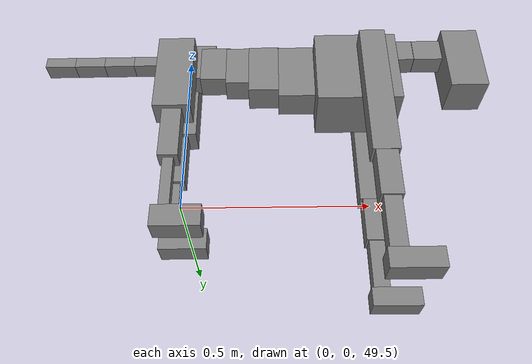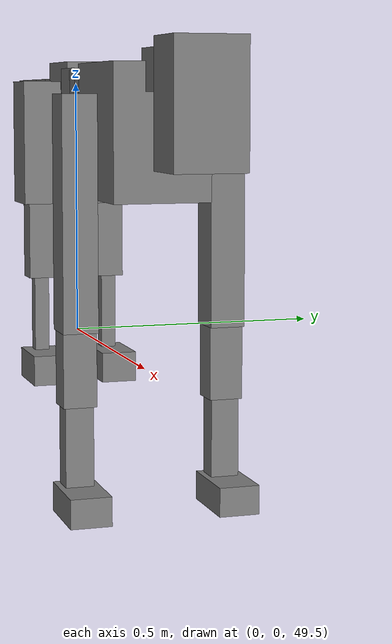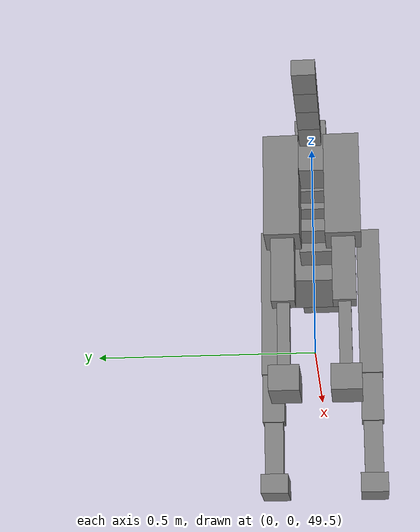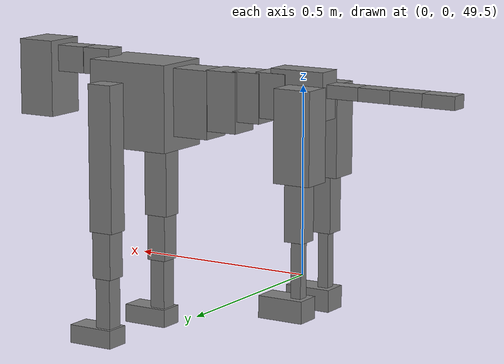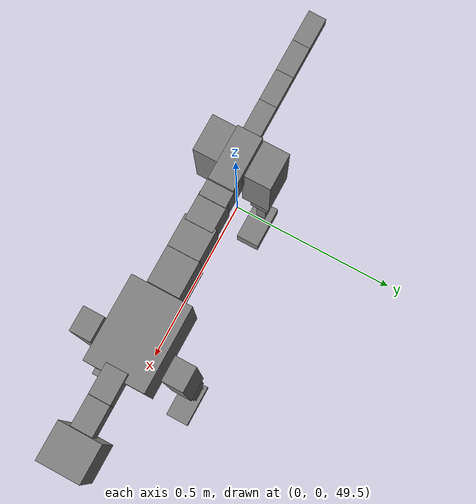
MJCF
<mujoco model="dog">

    <default>
        <joint armature="0.02" stiffness="1" damping="0.2" limited="true"/>
        <geom condim="3" friction="1 0.05 0.05" margin="0.01"/>
        <motor ctrllimited="true" ctrlrange="-1.0 1.0" forcelimited="true" gear="50"/>
    </default>

    <compiler inertiafromgeom="true" angle="radian"/>

    <option timestep="0.016" iterations="50" tolerance="1e-10" solver="Newton" jacobian="dense" cone="pyramidal"/>

    <size nconmax="20000" njmax="60000" nstack="5000000"/>
    <visual>
        <map force="0.1" zfar="30"/>
        <rgba haze="0.15 0.25 0.35 1"/>
        <quality shadowsize="2048"/>
        <global offwidth="800" offheight="800"/>
    </visual>

    <asset>
        <texture type="skybox" builtin="gradient" rgb1="0.3 0.5 0.7" rgb2="0 0 0" width="512" height="512"/>
        <texture name="texplane" type="2d" builtin="checker" rgb1=".2 .3 .4" rgb2=".1 0.15 0.2" width="512" height="512"
                 mark="cross" markrgb=".8 .8 .8"/>
        <texture name="texgeom" type="cube" builtin="flat" mark="cross" width="127" height="1278" rgb1="0.8 0.6 0.4"
                 rgb2="0.8 0.6 0.4" markrgb="1 1 1" random="0.01"/>

        <material name="matplane" reflectance="0.3" texture="texplane" texrepeat="1 1" texuniform="true"/>
        <material name="matgeom" texture="texgeom" texuniform="true" rgba="0.8 0.6 .4 1"/>
    </asset>

    <worldbody>
        <geom name="floor" pos="0 0 0" size="0 0 .25" type="plane" material="matplane" condim="3"/>

        <light directional="false" diffuse=".2 .2 .2" specular="0 0 0" pos="0 0 5" dir="0 0 -1" castshadow="false"/>
        <light mode="targetbodycom" target="torso" directional="false" diffuse=".8 .8 .8" specular="0.3 0.3 0.3"
               pos="0 0 4.0" dir="0 0 -1"/>

        <body name="root" pos="0 0 50">
            <freejoint name="root_1"/>
            <geom type="box" pos="0 0 -0.02" size="0.0774  0.0358  0.063" density="2030"/>

            <body name="spine1" pos="0.054 0 0">
                <joint name="spine1_y" axis="0 1 0" range="0 0.7" limited="true"/>
                <geom type="box" pos="0.02375 0 -0.03" size="0.04375  0.0375  0.05985" density="2030"/>

                <body name="spine2" pos="0.0612 0 0">
                    <joint name="spine2_y" axis="0 1 0" range="-0.15 0.15" limited="true"/>
                    <geom type="box" pos="0.03555  0  -0.04" size="0.04055  0.039  0.06615" density="2030"/>

                    <body name="spine3" pos="0.0730 0 0">
                        <joint name="spine3_y" axis="0 1 0" range="-0.15 0.15" limited="true"/>
                        <geom type="box" pos="0.03555  0  -0.057" size="0.04555  0.0445  0.081" density="2030"/>

                        <body name="spine4" pos="0.0780 0 0">
                            <joint name="spine4_y" axis="0 1 0" range="-0.15 0.15" limited="true"/>
                            <geom type="box" pos="0.05265  0  -0.07" size="0.05265  0.045  0.09135" density="2030"/>

                            <body name="torso" pos="0.1082 0 0">
                                <joint name="torso_y" axis="0 1 0" range="-0.15 0.15" limited="true"/>
                                <geom type="box" pos="0.11925  0  -0.085" size="0.11925  0.085  0.11745"
                                      density="2030"/>

                                <body name="neck1" pos="0.2160  0   0.0180">
                                    <joint name="neck1_y" axis="0 1 0" range="-1.2  -1" limited="true"/>
                                    <geom type="box" pos="0.0423  0  0" size="0.0423  0.03  0.036" density="2325"/>

                                    <body name="neck2" pos="0.0853  0  0">
                                        <joint name="neck2_y" axis="0 1 0" range="0.1  0" limited="true"/>
                                        <geom type="box" pos="0.0423  0  0" size="0.0423  0.03  0.036" density="2325"/>

                                        <body name="head" pos="0.0853  0  0">
                                            <joint name="head_y" axis="0 1 0" range="-0.3  -0.2" limited="true"/>
                                            <geom type="box" pos="0.0531  0  -0.055" size="0.0531  0.06  0.1044"
                                                  density="4030"/>

                                        </body>
                                    </body>
                                </body>

                                <body name="front_shoulder" pos="0.156  0   -0.0480">
                                    <joint name="front_shoulder_y" axis="0 1 0" range="-1 1.5" limited="true"/>
                                    <geom type="box" pos="0 0.13 -0.1737" size="0.0355  0.0303  0.2004" density="1158"/>
                                    <geom type="box" pos="0 -0.13 -0.1737" size="0.0355  0.0303  0.2004"
                                          density="1158"/>

                                    <body name="front_elbow" pos="0  0  -0.3475">
                                        <joint name="front_elbow_y" axis="0 1 0" range="-2 0" limited="true"/>
                                        <geom type="box" pos="0 0.13 -0.0770" size="0.0283  0.0290  0.0770"
                                              density="1081"/>
                                        <geom type="box" pos="0 -0.13 -0.0770" size="0.0283  0.0290  0.0770"
                                              density="1081"/>

                                        <body name="front_wrist" pos="0  0  -0.1540">
                                            <joint name="front_wrist_y" axis="0 1 0" range="-0.2 0" limited="true"/>
                                            <geom type="box" pos="0 0.13 -0.0763" size="0.0221  0.0246  0.0895"
                                                  density="1664"/>
                                            <geom type="box" pos="0 -0.13 -0.0763" size="0.0221  0.0246  0.0895"
                                                  density="1664"/>

                                            <body name="front_finger_end" pos="0  0  -0.1526">
                                                <joint name="front_finger_y" axis="0 1 0" range="-0.4 1"
                                                       limited="true"/>
                                                <geom type="box" pos="0.0356  0.13  -0.0102"
                                                      size="0.0654  0.0356  0.0252" density="1515"/>
                                                <geom type="box" pos="0.0356  -0.13  -0.0102"
                                                      size="0.0654  0.0356  0.0252" density="1515"/>

                                            </body>

                                        </body>
                                    </body>
                                </body>

                            </body>
                        </body>
                    </body>
                </body>
            </body>

            <body name="back_hip" pos="-0.03 0 -0.018">
                <joint name="back_hip_y" axis="0 1 0" range="-1.5 0.3" limited="true"/>
                <geom type="box" pos="0 0.07 -0.0996" size="0.0524  0.0411  0.1224" density="1154"/>
                <geom type="box" pos="0 -0.07 -0.0996" size="0.0524  0.0411  0.1224" density="1154"/>

                <body name="back_knee" pos="0  0  -0.1991">
                    <joint name="back_knee_y" axis="0 1 0" range="0 2.8" limited="true"/>
                    <geom type="box" pos="0 0.07 -0.0797" size="0.0274  0.0270  0.0952" density="1227"/>
                    <geom type="box" pos="0 -0.07 -0.0797" size="0.0274  0.0270  0.0952" density="1227"/>

                    <body name="back_ankle" pos="0  0  -0.1594">
                        <joint name="back_ankle_y" axis="0 1 0" range="-2.2 0" limited="true"/>
                        <geom type="box" pos="0 0.07 -0.0899" size="0.0145  0.0145  0.1012" density="1284"/>
                        <geom type="box" pos="0 -0.07 -0.0899" size="0.0145  0.0145  0.1012" density="1284"/>

                        <body name="back_toe_end" pos="0  0  -0.1798">
                            <joint name="back_toe_y" axis="0 1 0" range="-0.4 1" limited="true"/>
                            <geom type="box" pos="0.0350  0.07  -0.0146" size="0.0641  0.0350  0.0296" density="1515"/>
                            <geom type="box" pos="0.0350  -0.07  -0.0146" size="0.0641  0.0350  0.0296" density="1515"/>

                        </body>
                    </body>
                </body>
            </body>

            <body name="tail1" pos="-0.074 0 -0.006">
                <joint name="tail1_y" axis="0 1 0" range="-0.2 0.2" limited="true"/>
                <geom type="box" pos="-0.0536  0  0" size="0.045  0.025  0.0175" density="1587"/>

                <body name="tail2" pos="-0.09 0 0">
                    <joint name="tail2_y" axis="0 1 0" range="-0.2 0.2" limited="true"/>
                    <geom type="box" pos="-0.0536  0  0" size="0.045  0.025  0.0175" density="1587"/>

                    <body name="tail3" pos="-0.09 0 0">
                        <joint name="tail3_y" axis="0 1 0" range="-0.2 0.2" limited="true"/>
                        <geom type="box" pos="-0.0536  0  0" size="0.045  0.025  0.0175" density="1587"/>

                        <body name="tail4" pos="-0.09 0 0">
                            <joint name="tail4_y" axis="0 1 0" range="-0.2 0.2" limited="true"/>
                            <geom type="box" pos="-0.0536  0  0" size="0.045  0.025  0.0175" density="1587"/>

                        </body>
                    </body>
                </body>
            </body>
        </body>
    </worldbody>

    <actuator>
        <motor joint="spine1_y" forcerange="-150 150     "/>
        <motor joint="spine2_y" forcerange="-150 150     "/>
        <motor joint="spine3_y" forcerange="-150 150     "/>
        <motor joint="spine4_y" forcerange="-150 150     "/>
        <motor joint="torso_y" forcerange="-150 150     "/>
        <motor joint="neck1_y" forcerange="-100 100       "/>
        <motor joint="neck2_y" forcerange="-100 100       "/>
        <motor joint="head_y" forcerange="-150 150       "/>
        <motor joint="front_shoulder_y" forcerange="-145.85 156.41"/>
        <motor joint="front_elbow_y" forcerange="-175.48 135.11"/>
        <motor joint="front_wrist_y" forcerange="-64.89 131.85"/>
        <motor joint="front_finger_y" forcerange="-64.88 85.25"/>
        <motor joint="back_hip_y" forcerange="-394.61 353.68"/>
        <motor joint="back_knee_y" forcerange="-359.20 233.95"/>
        <motor joint="back_angle_y" forcerange="-55.01 77.49"/>
        <motor joint="back_toe_y" forcerange="-110.86 88.85"/>
        <motor joint="tail1_y" forcerange="-50 50     "/>
        <motor joint="tail2_y" forcerange="-50 50     "/>
        <motor joint="tail3_y" forcerange="-50 50     "/>
        <motor joint="tail4_y" forcerange="-50 50     "/>
    </actuator>
</mujoco>
